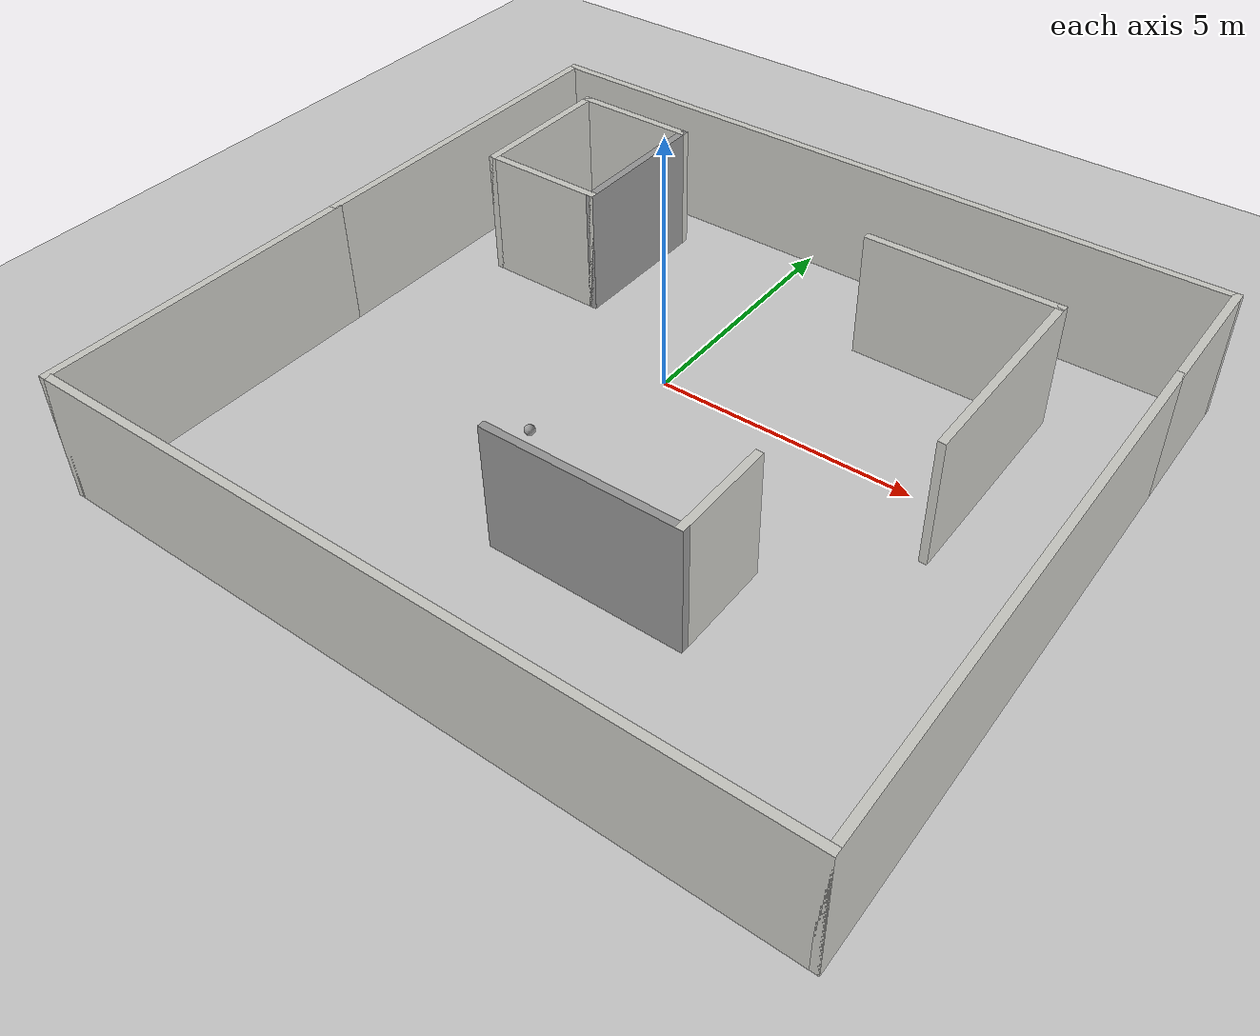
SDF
<sdf version="1.6">
 <world name="default">
  <light name="sun" type="directional">
   <pose>0 0 10 0 -0 0</pose>
   <diffuse>0.8 0.8 0.8 1</diffuse>
   <specular>0.2 0.2 0.2 1</specular>
   <attenuation>
    <range>1000</range>
    <constant>0.9</constant>
    <linear>0.01</linear>
    <quadratic>0.001</quadratic>
   </attenuation>
   <direction>-0.5 0.1 -0.9</direction>
  </light>
  <model name="ground_plane">
   <static>1</static>
   <link name="link">
    <collision name="collision">
     <geometry><plane><normal>0 0 1</normal><size>100 100</size></plane></geometry>
     <surface><friction><ode><mu>100</mu><mu2>50</mu2></ode></friction></surface>
    </collision>
    <visual name="visual">
     <cast_shadows>0</cast_shadows>
     <geometry><plane><normal>0 0 1</normal><size>100 100</size></plane></geometry>
     <material>
      <script><uri>file://media/materials/scripts/gazebo.material</uri><name>Gazebo/Grey</name></script>
     </material>
    </visual>
   </link>
  </model>
  <gravity>0 0 -9.8</gravity>
  <magnetic_field>6e-06 2.3e-05 -4.2e-05</magnetic_field>
  <atmosphere type="adiabatic"/>
  <physics name="default_physics" default="0" type="ode">
   <max_step_size>0.001</max_step_size>
   <real_time_factor>1</real_time_factor>
   <real_time_update_rate>1000</real_time_update_rate>
  </physics>
  <scene><ambient>0.4 0.4 0.4 1</ambient><background>0.7 0.7 0.7 1</background><shadows>1</shadows></scene>
  <spherical_coordinates>
   <surface_model>EARTH_WGS84</surface_model>
   <latitude_deg>0</latitude_deg>
   <longitude_deg>0</longitude_deg>
   <elevation>0</elevation>
   <heading_deg>0</heading_deg>
  </spherical_coordinates>
  <model name="Untitled">
   <pose>1.0688 -1.50711 0 0 -0 0</pose>
   <link name="Wall_1">
    <collision name="Wall_1_Collision">
     <geometry><box><size>7 0.15 2.5</size></box></geometry>
     <pose>0 0 1.25 0 -0 0</pose>
    </collision>
    <visual name="Wall_1_Visual">
     <pose>0 0 1.25 0 -0 0</pose>
     <geometry><box><size>7 0.15 2.5</size></box></geometry>
     <material>
      <script><uri>file://media/materials/scripts/gazebo.material</uri><name>Gazebo/CeilingTiled</name></script>
      <ambient>1 1 1 1</ambient>
     </material>
     <meta><layer>0</layer></meta>
    </visual>
    <pose>-7.05 3.05 0 0 0 -1.5708</pose>
   </link>
   <link name="Wall_10">
    <collision name="Wall_10_Collision">
     <geometry><box><size>3 0.15 2.5</size></box></geometry>
     <pose>0 0 1.25 0 -0 0</pose>
    </collision>
    <visual name="Wall_10_Visual">
     <pose>0 0 1.25 0 -0 0</pose>
     <geometry><box><size>3 0.15 2.5</size></box></geometry>
     <material>
      <script><uri>file://media/materials/scripts/gazebo.material</uri><name>Gazebo/CeilingTiled</name></script>
      <ambient>1 1 1 1</ambient>
     </material>
     <meta><layer>0</layer></meta>
    </visual>
    <pose>-5.91954 4.09119 0 0 0 -1.5708</pose>
   </link>
   <link name="Wall_11">
    <collision name="Wall_11_Collision">
     <geometry><box><size>2.5 0.15 2.5</size></box></geometry>
     <pose>0 0 1.25 0 -0 0</pose>
    </collision>
    <visual name="Wall_11_Visual">
     <pose>0 0 1.25 0 -0 0</pose>
     <geometry><box><size>2.5 0.15 2.5</size></box></geometry>
     <material>
      <script><uri>file://media/materials/scripts/gazebo.material</uri><name>Gazebo/CeilingTiled</name></script>
      <ambient>1 1 1 1</ambient>
     </material>
     <meta><layer>0</layer></meta>
    </visual>
    <pose>-4.74454 2.66619 0 0 -0 0</pose>
   </link>
   <link name="Wall_12">
    <collision name="Wall_12_Collision">
     <geometry><box><size>3 0.15 2.5</size></box></geometry>
     <pose>0 0 1.25 0 -0 0</pose>
    </collision>
    <visual name="Wall_12_Visual">
     <pose>0 0 1.25 0 -0 0</pose>
     <geometry><box><size>3 0.15 2.5</size></box></geometry>
     <material>
      <script><uri>file://media/materials/scripts/gazebo.material</uri><name>Gazebo/Grey</name></script>
      <ambient>1 1 1 1</ambient>
     </material>
     <meta><layer>0</layer></meta>
    </visual>
    <pose>-3.56954 4.09119 0 0 -0 1.5708</pose>
   </link>
   <link name="Wall_13">
    <collision name="Wall_13_Collision">
     <geometry><box><size>2.5 0.15 2.5</size></box></geometry>
     <pose>0 0 1.25 0 -0 0</pose>
    </collision>
    <visual name="Wall_13_Visual">
     <pose>0 0 1.25 0 -0 0</pose>
     <geometry><box><size>2.5 0.15 2.5</size></box></geometry>
     <material>
      <script><uri>file://media/materials/scripts/gazebo.material</uri><name>Gazebo/CeilingTiled</name></script>
      <ambient>1 1 1 1</ambient>
     </material>
     <meta><layer>0</layer></meta>
    </visual>
    <pose>-4.74454 5.51619 0 0 -0 3.14159</pose>
   </link>
   <link name="Wall_16">
    <collision name="Wall_16_Collision">
     <geometry><box><size>3.75 0.15 2.5</size></box></geometry>
     <pose>0 0 1.25 0 -0 0</pose>
    </collision>
    <visual name="Wall_16_Visual">
     <pose>0 0 1.25 0 -0 0</pose>
     <geometry><box><size>3.75 0.15 2.5</size></box></geometry>
     <material>
      <script><uri>file://media/materials/scripts/gazebo.material</uri><name>Gazebo/CeilingTiled</name></script>
      <ambient>1 1 1 1</ambient>
     </material>
     <meta><layer>0</layer></meta>
    </visual>
    <pose>3.03857 4.44553 0 0 -0 0</pose>
   </link>
   <link name="Wall_17">
    <collision name="Wall_17_Collision">
     <geometry><box><size>4.25 0.15 2.5</size></box></geometry>
     <pose>0 0 1.25 0 -0 0</pose>
    </collision>
    <visual name="Wall_17_Visual">
     <pose>0 0 1.25 0 -0 0</pose>
     <geometry><box><size>4.25 0.15 2.5</size></box></geometry>
     <material>
      <script><uri>file://media/materials/scripts/gazebo.material</uri><name>Gazebo/CeilingTiled</name></script>
      <ambient>1 1 1 1</ambient>
     </material>
     <meta><layer>0</layer></meta>
    </visual>
    <pose>4.83857 2.39553 0 0 0 -1.5708</pose>
   </link>
   <link name="Wall_19">
    <collision name="Wall_19_Collision">
     <geometry><box><size>2 0.15 2.5</size></box></geometry>
     <pose>0 0 1.25 0 -0 0</pose>
    </collision>
    <visual name="Wall_19_Visual">
     <pose>0 0 1.25 0 -0 0</pose>
     <geometry><box><size>2 0.15 2.5</size></box></geometry>
     <material>
      <script><uri>file://media/materials/scripts/gazebo.material</uri><name>Gazebo/CeilingTiled</name></script>
      <ambient>1 1 1 1</ambient>
     </material>
     <meta><layer>0</layer></meta>
    </visual>
    <pose>2.79867 -2.44456 0 0 0 -1.5708</pose>
   </link>
   <link name="Wall_20">
    <collision name="Wall_20_Collision">
     <geometry><box><size>3.75 0.15 2.5</size></box></geometry>
     <pose>0 0 1.25 0 -0 0</pose>
    </collision>
    <visual name="Wall_20_Visual">
     <pose>0 0 1.25 0 -0 0</pose>
     <geometry><box><size>3.75 0.15 2.5</size></box></geometry>
     <material>
      <script><uri>file://media/materials/scripts/gazebo.material</uri><name>Gazebo/Grey</name></script>
      <ambient>1 1 1 1</ambient>
     </material>
     <meta><layer>0</layer></meta>
    </visual>
    <pose>0.998674 -3.36956 0 0 -0 3.14159</pose>
   </link>
   <link name="Wall_3">
    <collision name="Wall_3_Collision">
     <geometry><box><size>6.25 0.15 2.5</size></box></geometry>
     <pose>0 0 1.25 0 -0 0</pose>
    </collision>
    <visual name="Wall_3_Visual">
     <pose>0 0 1.25 0 -0 0</pose>
     <geometry><box><size>6.25 0.15 2.5</size></box></geometry>
     <material>
      <script><uri>file://media/materials/scripts/gazebo.material</uri><name>Gazebo/CeilingTiled</name></script>
      <ambient>1 1 1 1</ambient>
     </material>
     <meta><layer>0</layer></meta>
    </visual>
    <pose>-7.05 -3.425 0 0 0 -1.5708</pose>
   </link>
   <link name="Wall_4">
    <collision name="Wall_4_Collision">
     <geometry><box><size>14.25 0.15 2.5</size></box></geometry>
     <pose>0 0 1.25 0 -0 0</pose>
    </collision>
    <visual name="Wall_4_Visual">
     <pose>0 0 1.25 0 -0 0</pose>
     <geometry><box><size>14.25 0.15 2.5</size></box></geometry>
     <material>
      <script><uri>file://media/materials/scripts/gazebo.material</uri><name>Gazebo/CeilingTiled</name></script>
      <ambient>1 1 1 1</ambient>
     </material>
     <meta><layer>0</layer></meta>
    </visual>
    <pose>0 -6.475 0 0 -0 0</pose>
   </link>
   <link name="Wall_5">
    <collision name="Wall_5_Collision">
     <geometry><box><size>10.5 0.15 2.5</size></box></geometry>
     <pose>0 0 1.25 0 -0 0</pose>
    </collision>
    <visual name="Wall_5_Visual">
     <pose>0 0 1.25 0 -0 0</pose>
     <geometry><box><size>10.5 0.15 2.5</size></box></geometry>
     <material>
      <script><uri>file://media/materials/scripts/gazebo.material</uri><name>Gazebo/CeilingTiled</name></script>
      <ambient>1 1 1 1</ambient>
     </material>
     <meta><layer>0</layer></meta>
    </visual>
    <pose>7.05 -1.3 0 0 -0 1.5708</pose>
   </link>
   <link name="Wall_7">
    <collision name="Wall_7_Collision">
     <geometry><box><size>2.75 0.15 2.5</size></box></geometry>
     <pose>0 0 1.25 0 -0 0</pose>
    </collision>
    <visual name="Wall_7_Visual">
     <pose>0 0 1.25 0 -0 0</pose>
     <geometry><box><size>2.75 0.15 2.5</size></box></geometry>
     <material>
      <script><uri>file://media/materials/scripts/gazebo.material</uri><name>Gazebo/CeilingTiled</name></script>
      <ambient>1 1 1 1</ambient>
     </material>
     <meta><layer>0</layer></meta>
    </visual>
    <pose>7.05 5.175 0 0 -0 1.5708</pose>
   </link>
   <link name="Wall_8">
    <collision name="Wall_8_Collision">
     <geometry><box><size>14.25 0.15 2.5</size></box></geometry>
     <pose>0 0 1.25 0 -0 0</pose>
    </collision>
    <visual name="Wall_8_Visual">
     <pose>0 0 1.25 0 -0 0</pose>
     <geometry><box><size>14.25 0.15 2.5</size></box></geometry>
     <material>
      <script><uri>file://media/materials/scripts/gazebo.material</uri><name>Gazebo/CeilingTiled</name></script>
      <ambient>1 1 1 1</ambient>
     </material>
     <meta><layer>0</layer></meta>
    </visual>
    <pose>0 6.475 0 0 -0 3.14159</pose>
   </link>
   <static>1</static>
  </model>
  <model name="my_white_ball">
   <link name="link_0">
    <inertial>
     <mass>1</mass>
     <inertia><ixx>0.1</ixx><ixy>0</ixy><ixz>0</ixz><iyy>0.1</iyy><iyz>0</iyz><izz>0.1</izz></inertia>
    </inertial>
    <visual name="visual">
     <geometry><sphere><radius>0.1</radius></sphere></geometry>
     <material>
      <lighting>1</lighting>
      <script><uri>file://media/materials/scripts/gazebo.material</uri><name>Gazebo/Grey</name></script>
      <shader type="pixel"><normal_map>__default__</normal_map></shader>
      <ambient>1 1 1 1</ambient>
      <diffuse>1 1 1 1</diffuse>
      <specular>1 1 1 1</specular>
      <emissive>1 1 1 1</emissive>
     </material>
    </visual>
    <collision name="collision">
     <geometry><sphere><radius>0.1</radius></sphere></geometry>
     <surface>
      <friction>
       <ode><mu>1</mu><mu2>1</mu2><fdir1>0 0 0</fdir1><slip1>0</slip1><slip2>0</slip2></ode>
       <torsional>
        <coefficient>1</coefficient>
        <patch_radius>0</patch_radius>
        <surface_radius>0</surface_radius>
        <use_patch_radius>1</use_patch_radius>
        <ode><slip>0</slip></ode>
       </torsional>
      </friction>
      <bounce><restitution_coefficient>0</restitution_coefficient><threshold>1e+06</threshold></bounce>
      <contact>
       <collide_without_contact>0</collide_without_contact>
       <collide_without_contact_bitmask>1</collide_without_contact_bitmask>
       <collide_bitmask>1</collide_bitmask>
       <ode>
        <soft_cfm>0</soft_cfm>
        <soft_erp>0.2</soft_erp>
        <kp>1e+13</kp>
        <kd>1</kd>
        <max_vel>0.01</max_vel>
        <min_depth>0</min_depth>
       </ode>
       <bullet>
        <split_impulse>1</split_impulse>
        <split_impulse_penetration_threshold>-0.01</split_impulse_penetration_threshold>
        <soft_cfm>0</soft_cfm>
        <soft_erp>0.2</soft_erp>
        <kp>1e+13</kp>
        <kd>1</kd>
       </bullet>
      </contact>
     </surface>
    </collision>
   </link>
   <static>0</static>
   <pose>-1.04977 -2.505 0.1 0 -0 0</pose>
  </model>
 </world>
</sdf>
